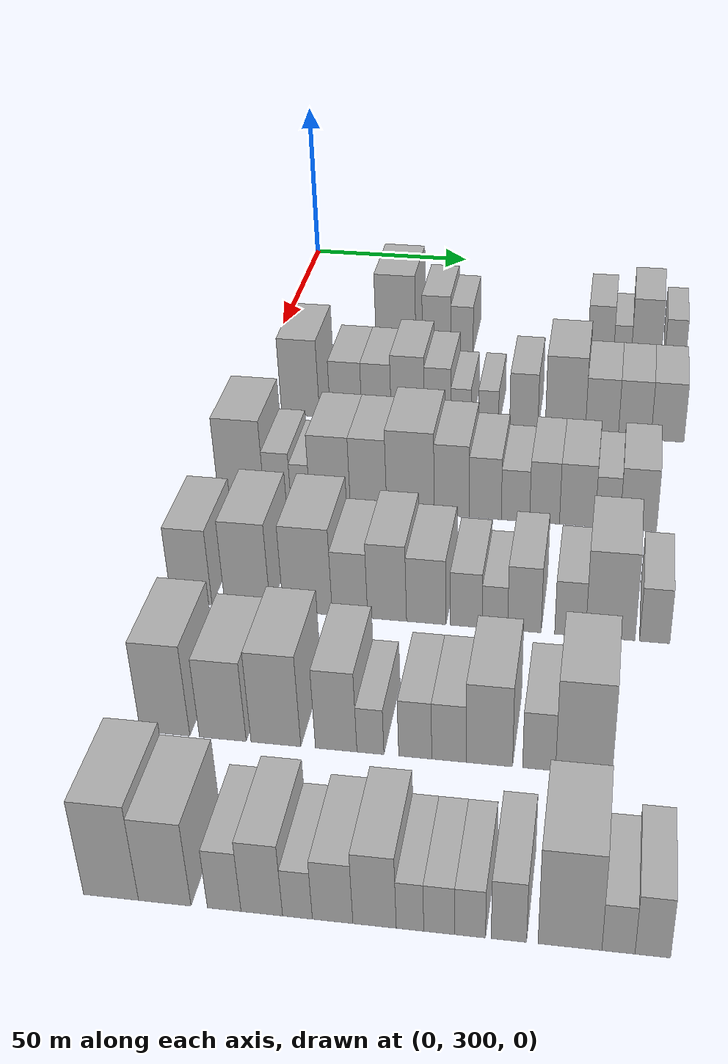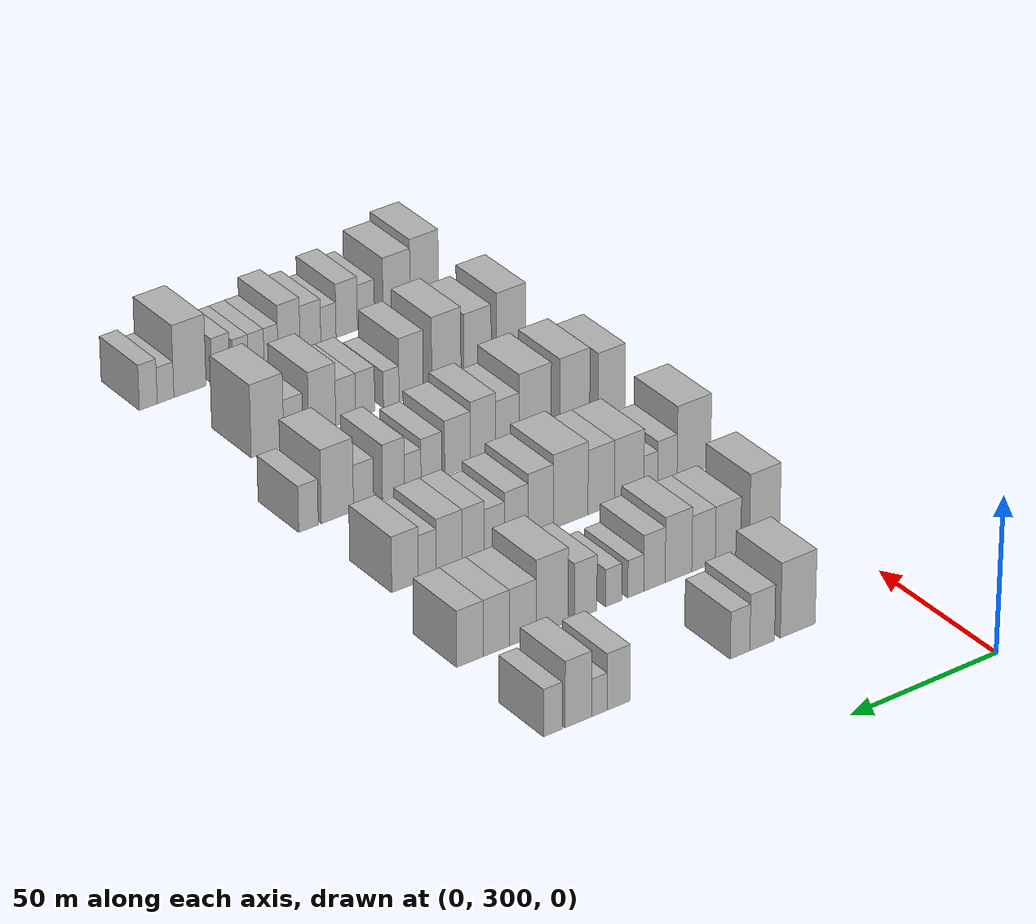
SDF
<sdf version="1.6">
 <world name="default">
  <model name="building_102">
   <static>1</static>
   <pose>50.0000 336.3893 0 0.000000 0.000000 0.000000</pose>
   <link name="link">
    <pose>0 0 12.00 0 0 0</pose>
    <collision name="collision"><geometry><box><size>20.0000 11.9224 24.0000</size></box></geometry></collision>
    <visual name="visual">
     <cast_shadows>0</cast_shadows>
     <geometry><box><size>20.0000 11.9224 24.0000</size></box></geometry>
     <material>
      <script>
       <uri>model://HANNAS_wall/materials/scripts</uri>
       <uri>model://HANNAS_wall/materials/textures</uri>
       <name>vrc/HANNAS_wall</name>
      </script>
     </material>
    </visual>
   </link>
  </model>
  <model name="building_103">
   <static>1</static>
   <pose>50.0000 348.5656 0 0.000000 0.000000 0.000000</pose>
   <link name="link">
    <pose>0 0 9.00 0 0 0</pose>
    <collision name="collision"><geometry><box><size>20.0000 8.4302 18.0000</size></box></geometry></collision>
    <visual name="visual">
     <cast_shadows>0</cast_shadows>
     <geometry><box><size>20.0000 8.4302 18.0000</size></box></geometry>
     <material>
      <script>
       <uri>model://HANNAS_wall/materials/scripts</uri>
       <uri>model://HANNAS_wall/materials/textures</uri>
       <name>vrc/HANNAS_wall</name>
      </script>
     </material>
    </visual>
   </link>
  </model>
  <model name="building_104">
   <static>1</static>
   <pose>50.0000 356.0994 0 0.000000 0.000000 0.000000</pose>
   <link name="link">
    <pose>0 0 7.50 0 0 0</pose>
    <collision name="collision"><geometry><box><size>20.0000 6.6374 15.0000</size></box></geometry></collision>
    <visual name="visual">
     <cast_shadows>0</cast_shadows>
     <geometry><box><size>20.0000 6.6374 15.0000</size></box></geometry>
     <material>
      <script>
       <uri>model://HANNAS_wall/materials/scripts</uri>
       <uri>model://HANNAS_wall/materials/textures</uri>
       <name>vrc/HANNAS_wall</name>
      </script>
     </material>
    </visual>
   </link>
  </model>
  <model name="building_105">
   <static>1</static>
   <pose>50.0000 396.8123 0 0.000000 0.000000 0.000000</pose>
   <link name="link">
    <pose>0 0 9.00 0 0 0</pose>
    <collision name="collision"><geometry><box><size>20.0000 7.5962 18.0000</size></box></geometry></collision>
    <visual name="visual">
     <cast_shadows>0</cast_shadows>
     <geometry><box><size>20.0000 7.5962 18.0000</size></box></geometry>
     <material>
      <script>
       <uri>model://HANNAS_wall/materials/scripts</uri>
       <uri>model://HANNAS_wall/materials/textures</uri>
       <name>vrc/HANNAS_wall</name>
      </script>
     </material>
    </visual>
   </link>
  </model>
  <model name="building_106">
   <static>1</static>
   <pose>50.0000 403.1653 0 0.000000 0.000000 0.000000</pose>
   <link name="link">
    <pose>0 0 6.00 0 0 0</pose>
    <collision name="collision"><geometry><box><size>20.0000 5.1096 12.0000</size></box></geometry></collision>
    <visual name="visual">
     <cast_shadows>0</cast_shadows>
     <geometry><box><size>20.0000 5.1096 12.0000</size></box></geometry>
     <material>
      <script>
       <uri>model://HANNAS_wall/materials/scripts</uri>
       <uri>model://HANNAS_wall/materials/textures</uri>
       <name>vrc/HANNAS_wall</name>
      </script>
     </material>
    </visual>
   </link>
  </model>
  <model name="building_107">
   <static>1</static>
   <pose>50.0000 410.0451 0 0.000000 0.000000 0.000000</pose>
   <link name="link">
    <pose>0 0 10.50 0 0 0</pose>
    <collision name="collision"><geometry><box><size>20.0000 8.6501 21.0000</size></box></geometry></collision>
    <visual name="visual">
     <cast_shadows>0</cast_shadows>
     <geometry><box><size>20.0000 8.6501 21.0000</size></box></geometry>
     <material>
      <script>
       <uri>model://HANNAS_wall/materials/scripts</uri>
       <uri>model://HANNAS_wall/materials/textures</uri>
       <name>vrc/HANNAS_wall</name>
      </script>
     </material>
    </visual>
   </link>
  </model>
  <model name="building_108">
   <static>1</static>
   <pose>50.0000 418.3935 0 0.000000 0.000000 0.000000</pose>
   <link name="link">
    <pose>0 0 7.50 0 0 0</pose>
    <collision name="collision"><geometry><box><size>20.0000 6.0468 15.0000</size></box></geometry></collision>
    <visual name="visual">
     <cast_shadows>0</cast_shadows>
     <geometry><box><size>20.0000 6.0468 15.0000</size></box></geometry>
     <material>
      <script>
       <uri>model://HANNAS_wall/materials/scripts</uri>
       <uri>model://HANNAS_wall/materials/textures</uri>
       <name>vrc/HANNAS_wall</name>
      </script>
     </material>
    </visual>
   </link>
  </model>
  <model name="building_233">
   <static>1</static>
   <pose>90.0000 316.4865 0 0.000000 0.000000 0.000000</pose>
   <link name="link">
    <pose>0 0 12.00 0 0 0</pose>
    <collision name="collision"><geometry><box><size>20.0000 10.6062 24.0000</size></box></geometry></collision>
    <visual name="visual">
     <cast_shadows>0</cast_shadows>
     <geometry><box><size>20.0000 10.6062 24.0000</size></box></geometry>
     <material>
      <script>
       <uri>model://HANNAS_wall/materials/scripts</uri>
       <uri>model://HANNAS_wall/materials/textures</uri>
       <name>vrc/HANNAS_wall</name>
      </script>
     </material>
    </visual>
   </link>
  </model>
  <model name="building_234">
   <static>1</static>
   <pose>90.0000 329.1819 0 0.000000 0.000000 0.000000</pose>
   <link name="link">
    <pose>0 0 9.00 0 0 0</pose>
    <collision name="collision"><geometry><box><size>20.0000 8.7847 18.0000</size></box></geometry></collision>
    <visual name="visual">
     <cast_shadows>0</cast_shadows>
     <geometry><box><size>20.0000 8.7847 18.0000</size></box></geometry>
     <material>
      <script>
       <uri>model://HANNAS_wall/materials/scripts</uri>
       <uri>model://HANNAS_wall/materials/textures</uri>
       <name>vrc/HANNAS_wall</name>
      </script>
     </material>
    </visual>
   </link>
  </model>
  <model name="building_235">
   <static>1</static>
   <pose>90.0000 337.6419 0 0.000000 0.000000 0.000000</pose>
   <link name="link">
    <pose>0 0 9.00 0 0 0</pose>
    <collision name="collision"><geometry><box><size>20.0000 8.1352 18.0000</size></box></geometry></collision>
    <visual name="visual">
     <cast_shadows>0</cast_shadows>
     <geometry><box><size>20.0000 8.1352 18.0000</size></box></geometry>
     <material>
      <script>
       <uri>model://HANNAS_wall/materials/scripts</uri>
       <uri>model://HANNAS_wall/materials/textures</uri>
       <name>vrc/HANNAS_wall</name>
      </script>
     </material>
    </visual>
   </link>
  </model>
  <model name="building_236">
   <static>1</static>
   <pose>90.0000 346.2817 0 0.000000 0.000000 0.000000</pose>
   <link name="link">
    <pose>0 0 10.50 0 0 0</pose>
    <collision name="collision"><geometry><box><size>20.0000 9.1444 21.0000</size></box></geometry></collision>
    <visual name="visual">
     <cast_shadows>0</cast_shadows>
     <geometry><box><size>20.0000 9.1444 21.0000</size></box></geometry>
     <material>
      <script>
       <uri>model://HANNAS_wall/materials/scripts</uri>
       <uri>model://HANNAS_wall/materials/textures</uri>
       <name>vrc/HANNAS_wall</name>
      </script>
     </material>
    </visual>
   </link>
  </model>
  <model name="building_237">
   <static>1</static>
   <pose>90.0000 354.5023 0 0.000000 0.000000 0.000000</pose>
   <link name="link">
    <pose>0 0 9.00 0 0 0</pose>
    <collision name="collision"><geometry><box><size>20.0000 7.2970 18.0000</size></box></geometry></collision>
    <visual name="visual">
     <cast_shadows>0</cast_shadows>
     <geometry><box><size>20.0000 7.2970 18.0000</size></box></geometry>
     <material>
      <script>
       <uri>model://HANNAS_wall/materials/scripts</uri>
       <uri>model://HANNAS_wall/materials/textures</uri>
       <name>vrc/HANNAS_wall</name>
      </script>
     </material>
    </visual>
   </link>
  </model>
  <model name="building_238">
   <static>1</static>
   <pose>90.0000 360.8655 0 0.000000 0.000000 0.000000</pose>
   <link name="link">
    <pose>0 0 6.00 0 0 0</pose>
    <collision name="collision"><geometry><box><size>20.0000 5.4293 12.0000</size></box></geometry></collision>
    <visual name="visual">
     <cast_shadows>0</cast_shadows>
     <geometry><box><size>20.0000 5.4293 12.0000</size></box></geometry>
     <material>
      <script>
       <uri>model://HANNAS_wall/materials/scripts</uri>
       <uri>model://HANNAS_wall/materials/textures</uri>
       <name>vrc/HANNAS_wall</name>
      </script>
     </material>
    </visual>
   </link>
  </model>
  <model name="building_239">
   <static>1</static>
   <pose>90.0000 368.3270 0 0.000000 0.000000 0.000000</pose>
   <link name="link">
    <pose>0 0 6.00 0 0 0</pose>
    <collision name="collision"><geometry><box><size>20.0000 5.4937 12.0000</size></box></geometry></collision>
    <visual name="visual">
     <cast_shadows>0</cast_shadows>
     <geometry><box><size>20.0000 5.4937 12.0000</size></box></geometry>
     <material>
      <script>
       <uri>model://HANNAS_wall/materials/scripts</uri>
       <uri>model://HANNAS_wall/materials/textures</uri>
       <name>vrc/HANNAS_wall</name>
      </script>
     </material>
    </visual>
   </link>
  </model>
  <model name="building_240">
   <static>1</static>
   <pose>90.0000 377.8877 0 0.000000 0.000000 0.000000</pose>
   <link name="link">
    <pose>0 0 9.00 0 0 0</pose>
    <collision name="collision"><geometry><box><size>20.0000 7.6279 18.0000</size></box></geometry></collision>
    <visual name="visual">
     <cast_shadows>0</cast_shadows>
     <geometry><box><size>20.0000 7.6279 18.0000</size></box></geometry>
     <material>
      <script>
       <uri>model://HANNAS_wall/materials/scripts</uri>
       <uri>model://HANNAS_wall/materials/textures</uri>
       <name>vrc/HANNAS_wall</name>
      </script>
     </material>
    </visual>
   </link>
  </model>
  <model name="building_241">
   <static>1</static>
   <pose>90.0000 389.0938 0 0.000000 0.000000 0.000000</pose>
   <link name="link">
    <pose>0 0 12.00 0 0 0</pose>
    <collision name="collision"><geometry><box><size>20.0000 10.7841 24.0000</size></box></geometry></collision>
    <visual name="visual">
     <cast_shadows>0</cast_shadows>
     <geometry><box><size>20.0000 10.7841 24.0000</size></box></geometry>
     <material>
      <script>
       <uri>model://HANNAS_wall/materials/scripts</uri>
       <uri>model://HANNAS_wall/materials/textures</uri>
       <name>vrc/HANNAS_wall</name>
      </script>
     </material>
    </visual>
   </link>
  </model>
  <model name="building_242">
   <static>1</static>
   <pose>90.0000 398.9006 0 0.000000 0.000000 0.000000</pose>
   <link name="link">
    <pose>0 0 9.00 0 0 0</pose>
    <collision name="collision"><geometry><box><size>20.0000 8.8295 18.0000</size></box></geometry></collision>
    <visual name="visual">
     <cast_shadows>0</cast_shadows>
     <geometry><box><size>20.0000 8.8295 18.0000</size></box></geometry>
     <material>
      <script>
       <uri>model://HANNAS_wall/materials/scripts</uri>
       <uri>model://HANNAS_wall/materials/textures</uri>
       <name>vrc/HANNAS_wall</name>
      </script>
     </material>
    </visual>
   </link>
  </model>
  <model name="building_243">
   <static>1</static>
   <pose>90.0000 407.6823 0 0.000000 0.000000 0.000000</pose>
   <link name="link">
    <pose>0 0 9.00 0 0 0</pose>
    <collision name="collision"><geometry><box><size>20.0000 8.7340 18.0000</size></box></geometry></collision>
    <visual name="visual">
     <cast_shadows>0</cast_shadows>
     <geometry><box><size>20.0000 8.7340 18.0000</size></box></geometry>
     <material>
      <script>
       <uri>model://HANNAS_wall/materials/scripts</uri>
       <uri>model://HANNAS_wall/materials/textures</uri>
       <name>vrc/HANNAS_wall</name>
      </script>
     </material>
    </visual>
   </link>
  </model>
  <model name="building_244">
   <static>1</static>
   <pose>90.0000 416.4187 0 0.000000 0.000000 0.000000</pose>
   <link name="link">
    <pose>0 0 9.00 0 0 0</pose>
    <collision name="collision"><geometry><box><size>20.0000 8.7388 18.0000</size></box></geometry></collision>
    <visual name="visual">
     <cast_shadows>0</cast_shadows>
     <geometry><box><size>20.0000 8.7388 18.0000</size></box></geometry>
     <material>
      <script>
       <uri>model://HANNAS_wall/materials/scripts</uri>
       <uri>model://HANNAS_wall/materials/textures</uri>
       <name>vrc/HANNAS_wall</name>
      </script>
     </material>
    </visual>
   </link>
  </model>
  <model name="building_369">
   <static>1</static>
   <pose>130.0000 310.3164 0 0.000000 0.000000 0.000000</pose>
   <link name="link">
    <pose>0 0 12.00 0 0 0</pose>
    <collision name="collision"><geometry><box><size>20.0000 11.8592 24.0000</size></box></geometry></collision>
    <visual name="visual">
     <cast_shadows>0</cast_shadows>
     <geometry><box><size>20.0000 11.8592 24.0000</size></box></geometry>
     <material>
      <script>
       <uri>model://HANNAS_wall/materials/scripts</uri>
       <uri>model://HANNAS_wall/materials/textures</uri>
       <name>vrc/HANNAS_wall</name>
      </script>
     </material>
    </visual>
   </link>
  </model>
  <model name="building_370">
   <static>1</static>
   <pose>130.0000 319.6260 0 0.000000 0.000000 0.000000</pose>
   <link name="link">
    <pose>0 0 7.50 0 0 0</pose>
    <collision name="collision"><geometry><box><size>20.0000 6.7598 15.0000</size></box></geometry></collision>
    <visual name="visual">
     <cast_shadows>0</cast_shadows>
     <geometry><box><size>20.0000 6.7598 15.0000</size></box></geometry>
     <material>
      <script>
       <uri>model://HANNAS_wall/materials/scripts</uri>
       <uri>model://HANNAS_wall/materials/textures</uri>
       <name>vrc/HANNAS_wall</name>
      </script>
     </material>
    </visual>
   </link>
  </model>
  <model name="building_371">
   <static>1</static>
   <pose>130.0000 325.4246 0 0.000000 0.000000 0.000000</pose>
   <link name="link">
    <pose>0 0 6.00 0 0 0</pose>
    <collision name="collision"><geometry><box><size>20.0000 4.8373 12.0000</size></box></geometry></collision>
    <visual name="visual">
     <cast_shadows>0</cast_shadows>
     <geometry><box><size>20.0000 4.8373 12.0000</size></box></geometry>
     <material>
      <script>
       <uri>model://HANNAS_wall/materials/scripts</uri>
       <uri>model://HANNAS_wall/materials/textures</uri>
       <name>vrc/HANNAS_wall</name>
      </script>
     </material>
    </visual>
   </link>
  </model>
  <model name="building_372">
   <static>1</static>
   <pose>130.0000 332.9785 0 0.000000 0.000000 0.000000</pose>
   <link name="link">
    <pose>0 0 10.50 0 0 0</pose>
    <collision name="collision"><geometry><box><size>20.0000 10.2705 21.0000</size></box></geometry></collision>
    <visual name="visual">
     <cast_shadows>0</cast_shadows>
     <geometry><box><size>20.0000 10.2705 21.0000</size></box></geometry>
     <material>
      <script>
       <uri>model://HANNAS_wall/materials/scripts</uri>
       <uri>model://HANNAS_wall/materials/textures</uri>
       <name>vrc/HANNAS_wall</name>
      </script>
     </material>
    </visual>
   </link>
  </model>
  <model name="building_373">
   <static>1</static>
   <pose>130.0000 342.7070 0 0.000000 0.000000 0.000000</pose>
   <link name="link">
    <pose>0 0 10.50 0 0 0</pose>
    <collision name="collision"><geometry><box><size>20.0000 9.1865 21.0000</size></box></geometry></collision>
    <visual name="visual">
     <cast_shadows>0</cast_shadows>
     <geometry><box><size>20.0000 9.1865 21.0000</size></box></geometry>
     <material>
      <script>
       <uri>model://HANNAS_wall/materials/scripts</uri>
       <uri>model://HANNAS_wall/materials/textures</uri>
       <name>vrc/HANNAS_wall</name>
      </script>
     </material>
    </visual>
   </link>
  </model>
  <model name="building_374">
   <static>1</static>
   <pose>130.0000 353.2796 0 0.000000 0.000000 0.000000</pose>
   <link name="link">
    <pose>0 0 12.00 0 0 0</pose>
    <collision name="collision"><geometry><box><size>20.0000 11.9588 24.0000</size></box></geometry></collision>
    <visual name="visual">
     <cast_shadows>0</cast_shadows>
     <geometry><box><size>20.0000 11.9588 24.0000</size></box></geometry>
     <material>
      <script>
       <uri>model://HANNAS_wall/materials/scripts</uri>
       <uri>model://HANNAS_wall/materials/textures</uri>
       <name>vrc/HANNAS_wall</name>
      </script>
     </material>
    </visual>
   </link>
  </model>
  <model name="building_375">
   <static>1</static>
   <pose>130.0000 363.6154 0 0.000000 0.000000 0.000000</pose>
   <link name="link">
    <pose>0 0 10.50 0 0 0</pose>
    <collision name="collision"><geometry><box><size>20.0000 8.7129 21.0000</size></box></geometry></collision>
    <visual name="visual">
     <cast_shadows>0</cast_shadows>
     <geometry><box><size>20.0000 8.7129 21.0000</size></box></geometry>
     <material>
      <script>
       <uri>model://HANNAS_wall/materials/scripts</uri>
       <uri>model://HANNAS_wall/materials/textures</uri>
       <name>vrc/HANNAS_wall</name>
      </script>
     </material>
    </visual>
   </link>
  </model>
  <model name="building_376">
   <static>1</static>
   <pose>130.0000 371.9286 0 0.000000 0.000000 0.000000</pose>
   <link name="link">
    <pose>0 0 9.00 0 0 0</pose>
    <collision name="collision"><geometry><box><size>20.0000 7.9136 18.0000</size></box></geometry></collision>
    <visual name="visual">
     <cast_shadows>0</cast_shadows>
     <geometry><box><size>20.0000 7.9136 18.0000</size></box></geometry>
     <material>
      <script>
       <uri>model://HANNAS_wall/materials/scripts</uri>
       <uri>model://HANNAS_wall/materials/textures</uri>
       <name>vrc/HANNAS_wall</name>
      </script>
     </material>
    </visual>
   </link>
  </model>
  <model name="building_377">
   <static>1</static>
   <pose>130.0000 379.3856 0 0.000000 0.000000 0.000000</pose>
   <link name="link">
    <pose>0 0 7.50 0 0 0</pose>
    <collision name="collision"><geometry><box><size>20.0000 7.0004 15.0000</size></box></geometry></collision>
    <visual name="visual">
     <cast_shadows>0</cast_shadows>
     <geometry><box><size>20.0000 7.0004 15.0000</size></box></geometry>
     <material>
      <script>
       <uri>model://HANNAS_wall/materials/scripts</uri>
       <uri>model://HANNAS_wall/materials/textures</uri>
       <name>vrc/HANNAS_wall</name>
      </script>
     </material>
    </visual>
   </link>
  </model>
  <model name="building_378">
   <static>1</static>
   <pose>130.0000 386.5549 0 0.000000 0.000000 0.000000</pose>
   <link name="link">
    <pose>0 0 9.00 0 0 0</pose>
    <collision name="collision"><geometry><box><size>20.0000 7.3382 18.0000</size></box></geometry></collision>
    <visual name="visual">
     <cast_shadows>0</cast_shadows>
     <geometry><box><size>20.0000 7.3382 18.0000</size></box></geometry>
     <material>
      <script>
       <uri>model://HANNAS_wall/materials/scripts</uri>
       <uri>model://HANNAS_wall/materials/textures</uri>
       <name>vrc/HANNAS_wall</name>
      </script>
     </material>
    </visual>
   </link>
  </model>
  <model name="building_379">
   <static>1</static>
   <pose>130.0000 394.5934 0 0.000000 0.000000 0.000000</pose>
   <link name="link">
    <pose>0 0 9.00 0 0 0</pose>
    <collision name="collision"><geometry><box><size>20.0000 8.7386 18.0000</size></box></geometry></collision>
    <visual name="visual">
     <cast_shadows>0</cast_shadows>
     <geometry><box><size>20.0000 8.7386 18.0000</size></box></geometry>
     <material>
      <script>
       <uri>model://HANNAS_wall/materials/scripts</uri>
       <uri>model://HANNAS_wall/materials/textures</uri>
       <name>vrc/HANNAS_wall</name>
      </script>
     </material>
    </visual>
   </link>
  </model>
  <model name="building_380">
   <static>1</static>
   <pose>130.0000 401.9679 0 0.000000 0.000000 0.000000</pose>
   <link name="link">
    <pose>0 0 7.50 0 0 0</pose>
    <collision name="collision"><geometry><box><size>20.0000 6.0105 15.0000</size></box></geometry></collision>
    <visual name="visual">
     <cast_shadows>0</cast_shadows>
     <geometry><box><size>20.0000 6.0105 15.0000</size></box></geometry>
     <material>
      <script>
       <uri>model://HANNAS_wall/materials/scripts</uri>
       <uri>model://HANNAS_wall/materials/textures</uri>
       <name>vrc/HANNAS_wall</name>
      </script>
     </material>
    </visual>
   </link>
  </model>
  <model name="building_381">
   <static>1</static>
   <pose>130.0000 409.4151 0 0.000000 0.000000 0.000000</pose>
   <link name="link">
    <pose>0 0 9.00 0 0 0</pose>
    <collision name="collision"><geometry><box><size>20.0000 8.8839 18.0000</size></box></geometry></collision>
    <visual name="visual">
     <cast_shadows>0</cast_shadows>
     <geometry><box><size>20.0000 8.8839 18.0000</size></box></geometry>
     <material>
      <script>
       <uri>model://HANNAS_wall/materials/scripts</uri>
       <uri>model://HANNAS_wall/materials/textures</uri>
       <name>vrc/HANNAS_wall</name>
      </script>
     </material>
    </visual>
   </link>
  </model>
  <model name="building_506">
   <static>1</static>
   <pose>170.0000 309.1451 0 0.000000 0.000000 0.000000</pose>
   <link name="link">
    <pose>0 0 10.50 0 0 0</pose>
    <collision name="collision"><geometry><box><size>20.0000 9.5688 21.0000</size></box></geometry></collision>
    <visual name="visual">
     <cast_shadows>0</cast_shadows>
     <geometry><box><size>20.0000 9.5688 21.0000</size></box></geometry>
     <material>
      <script>
       <uri>model://HANNAS_wall/materials/scripts</uri>
       <uri>model://HANNAS_wall/materials/textures</uri>
       <name>vrc/HANNAS_wall</name>
      </script>
     </material>
    </visual>
   </link>
  </model>
  <model name="building_507">
   <static>1</static>
   <pose>170.0000 322.1959 0 0.000000 0.000000 0.000000</pose>
   <link name="link">
    <pose>0 0 12.00 0 0 0</pose>
    <collision name="collision"><geometry><box><size>20.0000 10.5326 24.0000</size></box></geometry></collision>
    <visual name="visual">
     <cast_shadows>0</cast_shadows>
     <geometry><box><size>20.0000 10.5326 24.0000</size></box></geometry>
     <material>
      <script>
       <uri>model://HANNAS_wall/materials/scripts</uri>
       <uri>model://HANNAS_wall/materials/textures</uri>
       <name>vrc/HANNAS_wall</name>
      </script>
     </material>
    </visual>
   </link>
  </model>
  <model name="building_508">
   <static>1</static>
   <pose>170.0000 336.0998 0 0.000000 0.000000 0.000000</pose>
   <link name="link">
    <pose>0 0 12.00 0 0 0</pose>
    <collision name="collision"><geometry><box><size>20.0000 11.2753 24.0000</size></box></geometry></collision>
    <visual name="visual">
     <cast_shadows>0</cast_shadows>
     <geometry><box><size>20.0000 11.2753 24.0000</size></box></geometry>
     <material>
      <script>
       <uri>model://HANNAS_wall/materials/scripts</uri>
       <uri>model://HANNAS_wall/materials/textures</uri>
       <name>vrc/HANNAS_wall</name>
      </script>
     </material>
    </visual>
   </link>
  </model>
  <model name="building_509">
   <static>1</static>
   <pose>170.0000 345.7778 0 0.000000 0.000000 0.000000</pose>
   <link name="link">
    <pose>0 0 9.00 0 0 0</pose>
    <collision name="collision"><geometry><box><size>20.0000 8.0807 18.0000</size></box></geometry></collision>
    <visual name="visual">
     <cast_shadows>0</cast_shadows>
     <geometry><box><size>20.0000 8.0807 18.0000</size></box></geometry>
     <material>
      <script>
       <uri>model://HANNAS_wall/materials/scripts</uri>
       <uri>model://HANNAS_wall/materials/textures</uri>
       <name>vrc/HANNAS_wall</name>
      </script>
     </material>
    </visual>
   </link>
  </model>
  <model name="building_510">
   <static>1</static>
   <pose>170.0000 354.2401 0 0.000000 0.000000 0.000000</pose>
   <link name="link">
    <pose>0 0 10.50 0 0 0</pose>
    <collision name="collision"><geometry><box><size>20.0000 8.8441 21.0000</size></box></geometry></collision>
    <visual name="visual">
     <cast_shadows>0</cast_shadows>
     <geometry><box><size>20.0000 8.8441 21.0000</size></box></geometry>
     <material>
      <script>
       <uri>model://HANNAS_wall/materials/scripts</uri>
       <uri>model://HANNAS_wall/materials/textures</uri>
       <name>vrc/HANNAS_wall</name>
      </script>
     </material>
    </visual>
   </link>
  </model>
  <model name="building_511">
   <static>1</static>
   <pose>170.0000 363.1108 0 0.000000 0.000000 0.000000</pose>
   <link name="link">
    <pose>0 0 9.00 0 0 0</pose>
    <collision name="collision"><geometry><box><size>20.0000 8.8972 18.0000</size></box></geometry></collision>
    <visual name="visual">
     <cast_shadows>0</cast_shadows>
     <geometry><box><size>20.0000 8.8972 18.0000</size></box></geometry>
     <material>
      <script>
       <uri>model://HANNAS_wall/materials/scripts</uri>
       <uri>model://HANNAS_wall/materials/textures</uri>
       <name>vrc/HANNAS_wall</name>
      </script>
     </material>
    </visual>
   </link>
  </model>
  <model name="building_512">
   <static>1</static>
   <pose>170.0000 372.1183 0 0.000000 0.000000 0.000000</pose>
   <link name="link">
    <pose>0 0 7.50 0 0 0</pose>
    <collision name="collision"><geometry><box><size>20.0000 7.1179 15.0000</size></box></geometry></collision>
    <visual name="visual">
     <cast_shadows>0</cast_shadows>
     <geometry><box><size>20.0000 7.1179 15.0000</size></box></geometry>
     <material>
      <script>
       <uri>model://HANNAS_wall/materials/scripts</uri>
       <uri>model://HANNAS_wall/materials/textures</uri>
       <name>vrc/HANNAS_wall</name>
      </script>
     </material>
    </visual>
   </link>
  </model>
  <model name="building_513">
   <static>1</static>
   <pose>170.0000 378.5291 0 0.000000 0.000000 0.000000</pose>
   <link name="link">
    <pose>0 0 6.00 0 0 0</pose>
    <collision name="collision"><geometry><box><size>20.0000 5.7036 12.0000</size></box></geometry></collision>
    <visual name="visual">
     <cast_shadows>0</cast_shadows>
     <geometry><box><size>20.0000 5.7036 12.0000</size></box></geometry>
     <material>
      <script>
       <uri>model://HANNAS_wall/materials/scripts</uri>
       <uri>model://HANNAS_wall/materials/textures</uri>
       <name>vrc/HANNAS_wall</name>
      </script>
     </material>
    </visual>
   </link>
  </model>
  <model name="building_514">
   <static>1</static>
   <pose>170.0000 385.1097 0 0.000000 0.000000 0.000000</pose>
   <link name="link">
    <pose>0 0 9.00 0 0 0</pose>
    <collision name="collision"><geometry><box><size>20.0000 7.4576 18.0000</size></box></geometry></collision>
    <visual name="visual">
     <cast_shadows>0</cast_shadows>
     <geometry><box><size>20.0000 7.4576 18.0000</size></box></geometry>
     <material>
      <script>
       <uri>model://HANNAS_wall/materials/scripts</uri>
       <uri>model://HANNAS_wall/materials/textures</uri>
       <name>vrc/HANNAS_wall</name>
      </script>
     </material>
    </visual>
   </link>
  </model>
  <model name="building_515">
   <static>1</static>
   <pose>170.0000 395.2529 0 0.000000 0.000000 0.000000</pose>
   <link name="link">
    <pose>0 0 7.50 0 0 0</pose>
    <collision name="collision"><geometry><box><size>20.0000 6.8289 15.0000</size></box></geometry></collision>
    <visual name="visual">
     <cast_shadows>0</cast_shadows>
     <geometry><box><size>20.0000 6.8289 15.0000</size></box></geometry>
     <material>
      <script>
       <uri>model://HANNAS_wall/materials/scripts</uri>
       <uri>model://HANNAS_wall/materials/textures</uri>
       <name>vrc/HANNAS_wall</name>
      </script>
     </material>
    </visual>
   </link>
  </model>
  <model name="building_516">
   <static>1</static>
   <pose>170.0000 404.1033 0 0.000000 0.000000 0.000000</pose>
   <link name="link">
    <pose>0 0 12.00 0 0 0</pose>
    <collision name="collision"><geometry><box><size>20.0000 10.8717 24.0000</size></box></geometry></collision>
    <visual name="visual">
     <cast_shadows>0</cast_shadows>
     <geometry><box><size>20.0000 10.8717 24.0000</size></box></geometry>
     <material>
      <script>
       <uri>model://HANNAS_wall/materials/scripts</uri>
       <uri>model://HANNAS_wall/materials/textures</uri>
       <name>vrc/HANNAS_wall</name>
      </script>
     </material>
    </visual>
   </link>
  </model>
  <model name="building_517">
   <static>1</static>
   <pose>170.0000 413.8350 0 0.000000 0.000000 0.000000</pose>
   <link name="link">
    <pose>0 0 7.50 0 0 0</pose>
    <collision name="collision"><geometry><box><size>20.0000 6.5918 15.0000</size></box></geometry></collision>
    <visual name="visual">
     <cast_shadows>0</cast_shadows>
     <geometry><box><size>20.0000 6.5918 15.0000</size></box></geometry>
     <material>
      <script>
       <uri>model://HANNAS_wall/materials/scripts</uri>
       <uri>model://HANNAS_wall/materials/textures</uri>
       <name>vrc/HANNAS_wall</name>
      </script>
     </material>
    </visual>
   </link>
  </model>
  <model name="building_645">
   <static>1</static>
   <pose>210.0000 315.3050 0 0.000000 0.000000 0.000000</pose>
   <link name="link">
    <pose>0 0 12.00 0 0 0</pose>
    <collision name="collision"><geometry><box><size>20.0000 10.3863 24.0000</size></box></geometry></collision>
    <visual name="visual">
     <cast_shadows>0</cast_shadows>
     <geometry><box><size>20.0000 10.3863 24.0000</size></box></geometry>
     <material>
      <script>
       <uri>model://HANNAS_wall/materials/scripts</uri>
       <uri>model://HANNAS_wall/materials/textures</uri>
       <name>vrc/HANNAS_wall</name>
      </script>
     </material>
    </visual>
   </link>
  </model>
  <model name="building_646">
   <static>1</static>
   <pose>210.0000 327.3581 0 0.000000 0.000000 0.000000</pose>
   <link name="link">
    <pose>0 0 10.50 0 0 0</pose>
    <collision name="collision"><geometry><box><size>20.0000 9.7199 21.0000</size></box></geometry></collision>
    <visual name="visual">
     <cast_shadows>0</cast_shadows>
     <geometry><box><size>20.0000 9.7199 21.0000</size></box></geometry>
     <material>
      <script>
       <uri>model://HANNAS_wall/materials/scripts</uri>
       <uri>model://HANNAS_wall/materials/textures</uri>
       <name>vrc/HANNAS_wall</name>
      </script>
     </material>
    </visual>
   </link>
  </model>
  <model name="building_647">
   <static>1</static>
   <pose>210.0000 338.3560 0 0.000000 0.000000 0.000000</pose>
   <link name="link">
    <pose>0 0 12.00 0 0 0</pose>
    <collision name="collision"><geometry><box><size>20.0000 10.2760 24.0000</size></box></geometry></collision>
    <visual name="visual">
     <cast_shadows>0</cast_shadows>
     <geometry><box><size>20.0000 10.2760 24.0000</size></box></geometry>
     <material>
      <script>
       <uri>model://HANNAS_wall/materials/scripts</uri>
       <uri>model://HANNAS_wall/materials/textures</uri>
       <name>vrc/HANNAS_wall</name>
      </script>
     </material>
    </visual>
   </link>
  </model>
  <model name="building_648">
   <static>1</static>
   <pose>210.0000 350.7300 0 0.000000 0.000000 0.000000</pose>
   <link name="link">
    <pose>0 0 10.50 0 0 0</pose>
    <collision name="collision"><geometry><box><size>20.0000 8.4719 21.0000</size></box></geometry></collision>
    <visual name="visual">
     <cast_shadows>0</cast_shadows>
     <geometry><box><size>20.0000 8.4719 21.0000</size></box></geometry>
     <material>
      <script>
       <uri>model://HANNAS_wall/materials/scripts</uri>
       <uri>model://HANNAS_wall/materials/textures</uri>
       <name>vrc/HANNAS_wall</name>
      </script>
     </material>
    </visual>
   </link>
  </model>
  <model name="building_649">
   <static>1</static>
   <pose>210.0000 357.7095 0 0.000000 0.000000 0.000000</pose>
   <link name="link">
    <pose>0 0 6.00 0 0 0</pose>
    <collision name="collision"><geometry><box><size>20.0000 5.4870 12.0000</size></box></geometry></collision>
    <visual name="visual">
     <cast_shadows>0</cast_shadows>
     <geometry><box><size>20.0000 5.4870 12.0000</size></box></geometry>
     <material>
      <script>
       <uri>model://HANNAS_wall/materials/scripts</uri>
       <uri>model://HANNAS_wall/materials/textures</uri>
       <name>vrc/HANNAS_wall</name>
      </script>
     </material>
    </visual>
   </link>
  </model>
  <model name="building_650">
   <static>1</static>
   <pose>210.0000 366.7886 0 0.000000 0.000000 0.000000</pose>
   <link name="link">
    <pose>0 0 7.50 0 0 0</pose>
    <collision name="collision"><geometry><box><size>20.0000 6.6712 15.0000</size></box></geometry></collision>
    <visual name="visual">
     <cast_shadows>0</cast_shadows>
     <geometry><box><size>20.0000 6.6712 15.0000</size></box></geometry>
     <material>
      <script>
       <uri>model://HANNAS_wall/materials/scripts</uri>
       <uri>model://HANNAS_wall/materials/textures</uri>
       <name>vrc/HANNAS_wall</name>
      </script>
     </material>
    </visual>
   </link>
  </model>
  <model name="building_651">
   <static>1</static>
   <pose>210.0000 373.5555 0 0.000000 0.000000 0.000000</pose>
   <link name="link">
    <pose>0 0 7.50 0 0 0</pose>
    <collision name="collision"><geometry><box><size>20.0000 6.8626 15.0000</size></box></geometry></collision>
    <visual name="visual">
     <cast_shadows>0</cast_shadows>
     <geometry><box><size>20.0000 6.8626 15.0000</size></box></geometry>
     <material>
      <script>
       <uri>model://HANNAS_wall/materials/scripts</uri>
       <uri>model://HANNAS_wall/materials/textures</uri>
       <name>vrc/HANNAS_wall</name>
      </script>
     </material>
    </visual>
   </link>
  </model>
  <model name="building_652">
   <static>1</static>
   <pose>210.0000 381.6323 0 0.000000 0.000000 0.000000</pose>
   <link name="link">
    <pose>0 0 10.50 0 0 0</pose>
    <collision name="collision"><geometry><box><size>20.0000 9.2911 21.0000</size></box></geometry></collision>
    <visual name="visual">
     <cast_shadows>0</cast_shadows>
     <geometry><box><size>20.0000 9.2911 21.0000</size></box></geometry>
     <material>
      <script>
       <uri>model://HANNAS_wall/materials/scripts</uri>
       <uri>model://HANNAS_wall/materials/textures</uri>
       <name>vrc/HANNAS_wall</name>
      </script>
     </material>
    </visual>
   </link>
  </model>
  <model name="building_653">
   <static>1</static>
   <pose>210.0000 391.5376 0 0.000000 0.000000 0.000000</pose>
   <link name="link">
    <pose>0 0 7.50 0 0 0</pose>
    <collision name="collision"><geometry><box><size>20.0000 6.5194 15.0000</size></box></geometry></collision>
    <visual name="visual">
     <cast_shadows>0</cast_shadows>
     <geometry><box><size>20.0000 6.5194 15.0000</size></box></geometry>
     <material>
      <script>
       <uri>model://HANNAS_wall/materials/scripts</uri>
       <uri>model://HANNAS_wall/materials/textures</uri>
       <name>vrc/HANNAS_wall</name>
      </script>
     </material>
    </visual>
   </link>
  </model>
  <model name="building_654">
   <static>1</static>
   <pose>210.0000 400.3689 0 0.000000 0.000000 0.000000</pose>
   <link name="link">
    <pose>0 0 12.00 0 0 0</pose>
    <collision name="collision"><geometry><box><size>20.0000 11.1431 24.0000</size></box></geometry></collision>
    <visual name="visual">
     <cast_shadows>0</cast_shadows>
     <geometry><box><size>20.0000 11.1431 24.0000</size></box></geometry>
     <material>
      <script>
       <uri>model://HANNAS_wall/materials/scripts</uri>
       <uri>model://HANNAS_wall/materials/textures</uri>
       <name>vrc/HANNAS_wall</name>
      </script>
     </material>
    </visual>
   </link>
  </model>
  <model name="building_782">
   <static>1</static>
   <pose>250.0000 317.7143 0 0.000000 0.000000 0.000000</pose>
   <link name="link">
    <pose>0 0 12.00 0 0 0</pose>
    <collision name="collision"><geometry><box><size>20.0000 10.2009 24.0000</size></box></geometry></collision>
    <visual name="visual">
     <cast_shadows>0</cast_shadows>
     <geometry><box><size>20.0000 10.2009 24.0000</size></box></geometry>
     <material>
      <script>
       <uri>model://HANNAS_wall/materials/scripts</uri>
       <uri>model://HANNAS_wall/materials/textures</uri>
       <name>vrc/HANNAS_wall</name>
      </script>
     </material>
    </visual>
   </link>
  </model>
  <model name="building_783">
   <static>1</static>
   <pose>250.0000 327.6526 0 0.000000 0.000000 0.000000</pose>
   <link name="link">
    <pose>0 0 10.50 0 0 0</pose>
    <collision name="collision"><geometry><box><size>20.0000 9.6755 21.0000</size></box></geometry></collision>
    <visual name="visual">
     <cast_shadows>0</cast_shadows>
     <geometry><box><size>20.0000 9.6755 21.0000</size></box></geometry>
     <material>
      <script>
       <uri>model://HANNAS_wall/materials/scripts</uri>
       <uri>model://HANNAS_wall/materials/textures</uri>
       <name>vrc/HANNAS_wall</name>
      </script>
     </material>
    </visual>
   </link>
  </model>
  <model name="building_784">
   <static>1</static>
   <pose>250.0000 338.5583 0 0.000000 0.000000 0.000000</pose>
   <link name="link">
    <pose>0 0 7.50 0 0 0</pose>
    <collision name="collision"><geometry><box><size>20.0000 6.1360 15.0000</size></box></geometry></collision>
    <visual name="visual">
     <cast_shadows>0</cast_shadows>
     <geometry><box><size>20.0000 6.1360 15.0000</size></box></geometry>
     <material>
      <script>
       <uri>model://HANNAS_wall/materials/scripts</uri>
       <uri>model://HANNAS_wall/materials/textures</uri>
       <name>vrc/HANNAS_wall</name>
      </script>
     </material>
    </visual>
   </link>
  </model>
  <model name="building_785">
   <static>1</static>
   <pose>250.0000 345.4038 0 0.000000 0.000000 0.000000</pose>
   <link name="link">
    <pose>0 0 9.00 0 0 0</pose>
    <collision name="collision"><geometry><box><size>20.0000 7.5549 18.0000</size></box></geometry></collision>
    <visual name="visual">
     <cast_shadows>0</cast_shadows>
     <geometry><box><size>20.0000 7.5549 18.0000</size></box></geometry>
     <material>
      <script>
       <uri>model://HANNAS_wall/materials/scripts</uri>
       <uri>model://HANNAS_wall/materials/textures</uri>
       <name>vrc/HANNAS_wall</name>
      </script>
     </material>
    </visual>
   </link>
  </model>
  <model name="building_786">
   <static>1</static>
   <pose>250.0000 351.8685 0 0.000000 0.000000 0.000000</pose>
   <link name="link">
    <pose>0 0 6.00 0 0 0</pose>
    <collision name="collision"><geometry><box><size>20.0000 5.3745 12.0000</size></box></geometry></collision>
    <visual name="visual">
     <cast_shadows>0</cast_shadows>
     <geometry><box><size>20.0000 5.3745 12.0000</size></box></geometry>
     <material>
      <script>
       <uri>model://HANNAS_wall/materials/scripts</uri>
       <uri>model://HANNAS_wall/materials/textures</uri>
       <name>vrc/HANNAS_wall</name>
      </script>
     </material>
    </visual>
   </link>
  </model>
  <model name="building_787">
   <static>1</static>
   <pose>250.0000 358.1971 0 0.000000 0.000000 0.000000</pose>
   <link name="link">
    <pose>0 0 7.50 0 0 0</pose>
    <collision name="collision"><geometry><box><size>20.0000 7.2829 15.0000</size></box></geometry></collision>
    <visual name="visual">
     <cast_shadows>0</cast_shadows>
     <geometry><box><size>20.0000 7.2829 15.0000</size></box></geometry>
     <material>
      <script>
       <uri>model://HANNAS_wall/materials/scripts</uri>
       <uri>model://HANNAS_wall/materials/textures</uri>
       <name>vrc/HANNAS_wall</name>
      </script>
     </material>
    </visual>
   </link>
  </model>
  <model name="building_788">
   <static>1</static>
   <pose>250.0000 365.7067 0 0.000000 0.000000 0.000000</pose>
   <link name="link">
    <pose>0 0 9.00 0 0 0</pose>
    <collision name="collision"><geometry><box><size>20.0000 7.7362 18.0000</size></box></geometry></collision>
    <visual name="visual">
     <cast_shadows>0</cast_shadows>
     <geometry><box><size>20.0000 7.7362 18.0000</size></box></geometry>
     <material>
      <script>
       <uri>model://HANNAS_wall/materials/scripts</uri>
       <uri>model://HANNAS_wall/materials/textures</uri>
       <name>vrc/HANNAS_wall</name>
      </script>
     </material>
    </visual>
   </link>
  </model>
  <model name="building_789">
   <static>1</static>
   <pose>250.0000 372.0158 0 0.000000 0.000000 0.000000</pose>
   <link name="link">
    <pose>0 0 6.00 0 0 0</pose>
    <collision name="collision"><geometry><box><size>20.0000 4.8820 12.0000</size></box></geometry></collision>
    <visual name="visual">
     <cast_shadows>0</cast_shadows>
     <geometry><box><size>20.0000 4.8820 12.0000</size></box></geometry>
     <material>
      <script>
       <uri>model://HANNAS_wall/materials/scripts</uri>
       <uri>model://HANNAS_wall/materials/textures</uri>
       <name>vrc/HANNAS_wall</name>
      </script>
     </material>
    </visual>
   </link>
  </model>
  <model name="building_790">
   <static>1</static>
   <pose>250.0000 377.1921 0 0.000000 0.000000 0.000000</pose>
   <link name="link">
    <pose>0 0 6.00 0 0 0</pose>
    <collision name="collision"><geometry><box><size>20.0000 5.4707 12.0000</size></box></geometry></collision>
    <visual name="visual">
     <cast_shadows>0</cast_shadows>
     <geometry><box><size>20.0000 5.4707 12.0000</size></box></geometry>
     <material>
      <script>
       <uri>model://HANNAS_wall/materials/scripts</uri>
       <uri>model://HANNAS_wall/materials/textures</uri>
       <name>vrc/HANNAS_wall</name>
      </script>
     </material>
    </visual>
   </link>
  </model>
  <model name="building_791">
   <static>1</static>
   <pose>250.0000 382.6362 0 0.000000 0.000000 0.000000</pose>
   <link name="link">
    <pose>0 0 6.00 0 0 0</pose>
    <collision name="collision"><geometry><box><size>20.0000 5.4175 12.0000</size></box></geometry></collision>
    <visual name="visual">
     <cast_shadows>0</cast_shadows>
     <geometry><box><size>20.0000 5.4175 12.0000</size></box></geometry>
     <material>
      <script>
       <uri>model://HANNAS_wall/materials/scripts</uri>
       <uri>model://HANNAS_wall/materials/textures</uri>
       <name>vrc/HANNAS_wall</name>
      </script>
     </material>
    </visual>
   </link>
  </model>
  <model name="building_792">
   <static>1</static>
   <pose>250.0000 389.4353 0 0.000000 0.000000 0.000000</pose>
   <link name="link">
    <pose>0 0 7.50 0 0 0</pose>
    <collision name="collision"><geometry><box><size>20.0000 6.1805 15.0000</size></box></geometry></collision>
    <visual name="visual">
     <cast_shadows>0</cast_shadows>
     <geometry><box><size>20.0000 6.1805 15.0000</size></box></geometry>
     <material>
      <script>
       <uri>model://HANNAS_wall/materials/scripts</uri>
       <uri>model://HANNAS_wall/materials/textures</uri>
       <name>vrc/HANNAS_wall</name>
      </script>
     </material>
    </visual>
   </link>
  </model>
  <model name="building_793">
   <static>1</static>
   <pose>250.0000 400.0518 0 0.000000 0.000000 0.000000</pose>
   <link name="link">
    <pose>0 0 12.00 0 0 0</pose>
    <collision name="collision"><geometry><box><size>20.0000 11.0525 24.0000</size></box></geometry></collision>
    <visual name="visual">
     <cast_shadows>0</cast_shadows>
     <geometry><box><size>20.0000 11.0525 24.0000</size></box></geometry>
     <material>
      <script>
       <uri>model://HANNAS_wall/materials/scripts</uri>
       <uri>model://HANNAS_wall/materials/textures</uri>
       <name>vrc/HANNAS_wall</name>
      </script>
     </material>
    </visual>
   </link>
  </model>
  <model name="building_794">
   <static>1</static>
   <pose>250.0000 408.4300 0 0.000000 0.000000 0.000000</pose>
   <link name="link">
    <pose>0 0 6.00 0 0 0</pose>
    <collision name="collision"><geometry><box><size>20.0000 5.7039 12.0000</size></box></geometry></collision>
    <visual name="visual">
     <cast_shadows>0</cast_shadows>
     <geometry><box><size>20.0000 5.7039 12.0000</size></box></geometry>
     <material>
      <script>
       <uri>model://HANNAS_wall/materials/scripts</uri>
       <uri>model://HANNAS_wall/materials/textures</uri>
       <name>vrc/HANNAS_wall</name>
      </script>
     </material>
    </visual>
   </link>
  </model>
  <model name="building_795">
   <static>1</static>
   <pose>250.0000 414.3259 0 0.000000 0.000000 0.000000</pose>
   <link name="link">
    <pose>0 0 7.50 0 0 0</pose>
    <collision name="collision"><geometry><box><size>20.0000 6.0879 15.0000</size></box></geometry></collision>
    <visual name="visual">
     <cast_shadows>0</cast_shadows>
     <geometry><box><size>20.0000 6.0879 15.0000</size></box></geometry>
     <material>
      <script>
       <uri>model://HANNAS_wall/materials/scripts</uri>
       <uri>model://HANNAS_wall/materials/textures</uri>
       <name>vrc/HANNAS_wall</name>
      </script>
     </material>
    </visual>
   </link>
  </model>
 </world>
</sdf>
